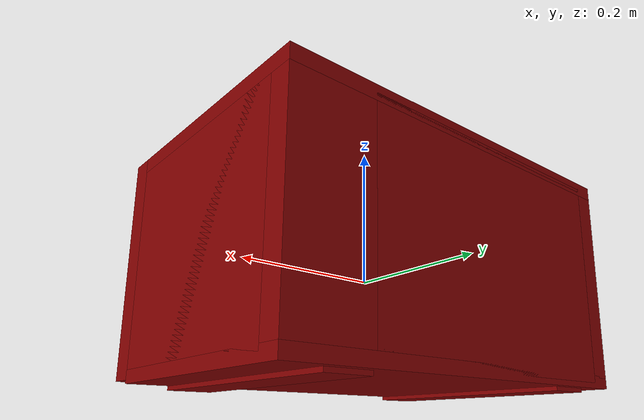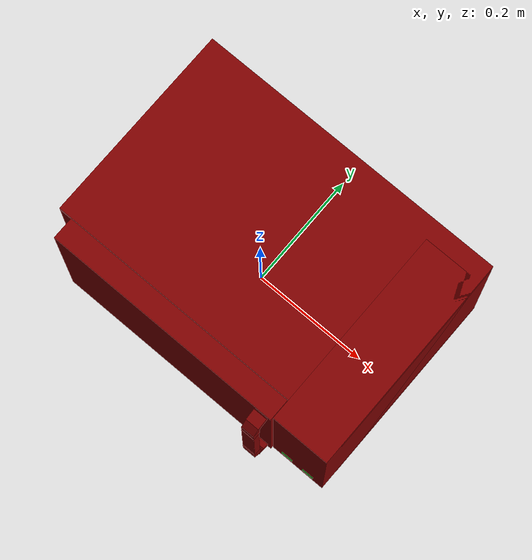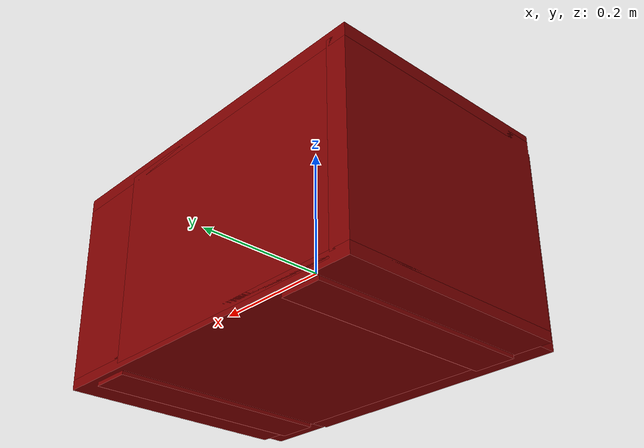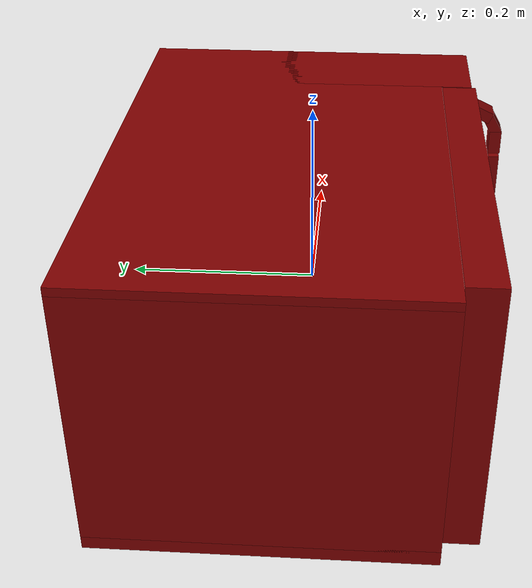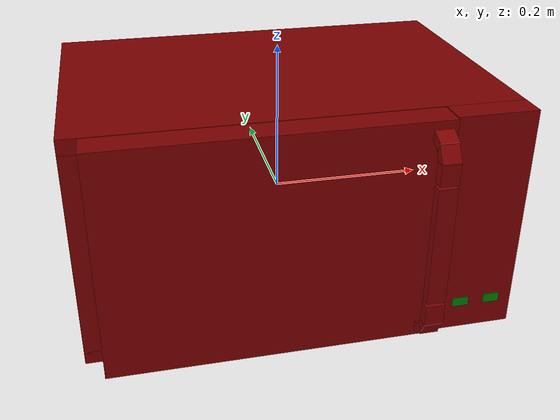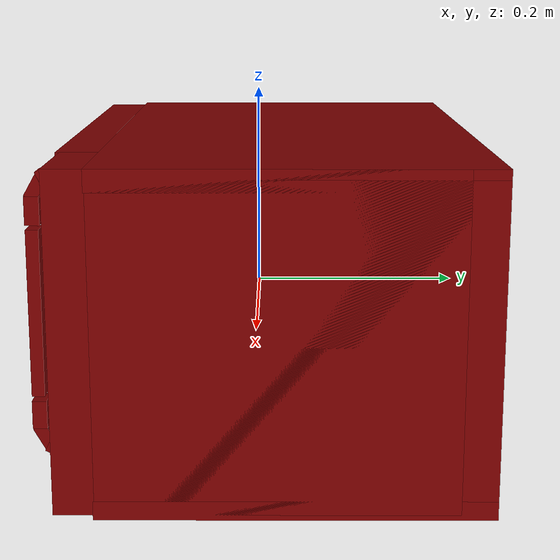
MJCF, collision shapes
<?xml version='1.0' encoding='UTF-8'?>
<mujoco model="model">
  <option timestep="0.002" gravity="0.0 0.0 -9.81"/>
  <compiler angle="radian"/>
  <asset>
    <mesh file="visuals/door.obj" name="door_vis"/>
    <mesh file="visuals/door_Clear.obj" name="door_Clear_vis"/>
    <mesh file="visuals/Body001.obj" name="Body001_vis"/>
    <mesh file="visuals/Disc001.obj" name="Disc001_vis"/>
    <texture file="visuals/T_BC001.png" name="Body001_material" type="2d"/>
    <material name="Body001_material" rgba="1 1 1 1.0" texture="Body001_material" shininess="0.4472135901451111" specular="0.5"/>
    <texture file="visuals/T_BC001.png" name="door_material" type="2d"/>
    <material name="door_material" rgba="1 1 1 1.0" texture="door_material" shininess="0.4472135901451111" specular="0.5"/>
    <material name="door_Clear_material" rgba="0.11601322144269943 0.11601322144269943 0.11601322144269943 0.699999988079071" shininess="0.4472135901451111" specular="0.3103448502657381"/>
    <texture file="visuals/T_BC001.png" name="Disc001_material" type="2d"/>
    <material name="Disc001_material" rgba="1 1 1 1.0" texture="Disc001_material" shininess="0.4472135901451111" specular="0.5"/>
  </asset>
  <default>
    <default class="visual">
      <geom conaffinity="0" contype="0" group="1" type="mesh"/>
    </default>
    <default class="collision">
      <geom group="0" rgba="0.5 0 0 0.5"/>
    </default>
    <default class="spawn">
      <geom group="0" rgba="1 1 1 0.5" contype="0" conaffinity="0"/>
      <site group="0" rgba="1 1 1 0.5"/>
    </default>
    <default class="region">
      <geom group="1" conaffinity="0" contype="0" rgba="0 1 0 0"/>
    </default>
  </default>
  <worldbody>
    <body>
      <body name="object">
        <geom class="collision" type="cylinder" pos="-0.053759023547172546 0.01935245841741562 -0.12291630357503891" size="0.14134545624256134 0.0019897485617548227" quat="1.0 0.0 0.0 0.0" name="tray" rgba="0 1 0 0.5"/>
        <geom class="collision" type="box" pos="0.24784424901008606 -0.17830020189285278 -0.10434824228286743" size="0.01096301432698965 0.0005531709175556898 0.006239055655896664" quat="1.0 0.0 0.0 0.0" name="stop_button" rgba="0.0 0.5 0 0.5"/>
        <geom class="collision" type="box" pos="0.20505373179912567 -0.17830020189285278 -0.10434824228286743" size="0.010903910733759403 0.0005531710339710116 0.006239056587219238" quat="1.0 0.0 0.0 0.0" name="start_button" rgba="0.0 0.5 0 0.5"/>
        <geom mesh="Body001_vis" type="mesh" solimp="0.998 0.998 0.001" solref="0.001 1" friction="0.95 0.3 0.1" class="visual" material="Body001_material"/>
        <geom class="collision" type="box" pos="1.5071140779809866e-08 0.03501347452402115 0.14736834168434143" size="0.2771352529525757 0.17626895010471344 0.009800040163099766" quat="1.0 0.0 0.0 0.0"/>
        <geom class="collision" type="box" pos="1.5071140779809866e-08 0.03501347452402115 -0.1419992595911026" size="0.2771352529525757 0.17626895010471344 0.008780794218182564" quat="1.0 0.0 0.0 0.0"/>
        <geom class="collision" type="box" pos="-0.2614961564540863 0.035013481974601746 0.0060613928362727165" size="0.015639089047908783 0.17626896500587463 0.14205798506736755" quat="1.0 0.0 0.0 0.0"/>
        <geom class="collision" type="box" pos="0.20731253921985626 0.035562701523303986 0.0060613928362727165" size="0.06982272118330002 0.1757197082042694 0.14205798506736755" quat="1.0 0.0 0.0 0.0"/>
        <geom class="collision" type="box" pos="-0.041193969547748566 0.19684278964996338 0.0019925192464143038" size="0.20513026416301727 0.014439636841416359 0.1452065259218216" quat="1.0 0.0 0.0 0.0"/>
        <geom class="collision" type="box" pos="0.22564545273780823 0.0016016747104004025 0.005581490695476532" size="0.051489803940057755 0.17765840888023376 0.1515868604183197" quat="1.0 0.0 0.0 0.0"/>
        <geom class="collision" type="box" pos="-0.1910099983215332 0.033206794410943985 -0.15430724620819092" size="0.0305914506316185 0.17000168561935425 0.00286117079667747" quat="1.0 0.0 0.0 0.0"/>
        <geom class="collision" type="box" pos="0.19278842210769653 0.033206794410943985 -0.15430724620819092" size="0.0305914506316185 0.17000168561935425 0.00286117079667747" quat="1.0 0.0 0.0 0.0"/>
        <body name="door">
          <joint axis="0.0 0.0 1.0" pos="-0.25734397768974304 -0.16165359318256378 0.003742557018995285" limited="true" name="microjoint" range="-1.5707963267948966 0.0" type="hinge" damping="1" frictionloss="1" armature=".01" stiffness="0.05"/>
          <geom mesh="door_vis" type="mesh" solimp="0.998 0.998 0.001" solref="0.001 1" friction="0.95 0.3 0.1" class="visual" material="door_material"/>
          <geom class="collision" type="box" pos="-0.039882414042949677 -0.1612330824136734 0.0055624027736485004" size="0.21326802670955658 0.019354145973920822 0.15110208094120026" quat="1.0 0.0 0.0 0.0"/>
          <geom class="collision" type="box" pos="0.1542731523513794 -0.20566736161708832 0.0045122005976736546" size="0.012436413206160069 0.006091923452913761 0.07990747690200806" quat="1.0 0.0 0.0 0.0" name="door_handle_main"/>
          <geom class="collision" type="box" pos="0.154417023062706 -0.20513561367988586 -0.0935002788901329" size="0.012513306923210621 0.006880520842969418 0.013624418526887894" quat="1.0 0.0 0.0 0.0"/>
          <geom class="collision" type="box" pos="0.15464726090431213 -0.20087064802646637 -0.11470231413841248" size="0.011913502588868141 0.011351507157087326 0.006156741641461849" quat="0.864357054233551 -0.5028786063194275 7.70788858517335e-07 -5.2654712590083363e-08"/>
          <geom class="collision" type="box" pos="0.1547970175743103 -0.18898290395736694 -0.12767444550991058" size="0.012174788862466812 0.010396204888820648 0.006479963660240173" quat="0.9755166172981262 -0.21992573142051697 4.951577921019634e-07 7.552212650807633e-07"/>
          <geom class="collision" type="box" pos="0.15461300313472748 -0.20513561367988586 0.10205253213644028" size="0.011992817744612694 0.006880525965243578 0.013624419458210468" quat="1.0 0.0 0.0 0.0"/>
          <geom class="collision" type="box" pos="0.15468689799308777 -0.20087064802646637 0.12325455248355865" size="0.01183171197772026 0.011351506225764751 0.006156741641461849" quat="9.661798827664825e-08 -6.952240596547199e-07 -0.5028786063194275 0.864357054233551"/>
          <geom class="collision" type="box" pos="0.15490113198757172 -0.18898290395736694 0.13622668385505676" size="0.012070685625076294 0.010396204888820648 0.006479963660240173" quat="7.97862526269455e-07 4.855448878515745e-07 0.21992573142051697 -0.9755166172981262"/>
          <geom class="collision" type="box" pos="-0.050893645733594894 -0.16073425114154816 0.0058904653415083885" size="0.1643805205821991 0.015393154695630074 0.10524028539657593" quat="1.0 0.0 0.0 0.0"/>
          <geom class="collision" type="box" pos="-0.039882414042949677 -0.1762211173772812 0.0055624027736485004" size="0.21326757967472076 0.004366063047200441 0.15110161900520325" quat="1.0 0.0 0.0 0.0" name="door_main"/>
          <body name="door_Clear">
            <geom mesh="door_Clear_vis" type="mesh" solimp="0.998 0.998 0.001" solref="0.001 1" friction="0.95 0.3 0.1" class="visual" material="door_Clear_material"/>
            <geom class="collision" type="box" pos="-0.050893645733594894 -0.16073425114154816 0.0058904653415083885" size="0.1643805205821991 0.015393154695630074 0.10524028539657593" quat="1.0 0.0 0.0 0.0"/>
          </body>
        </body>
        <body name="Disc001">
          <joint axis="0.0 0.0 1.0" pos="-0.05375900864601135 0.019352491945028305 -0.12597490847110748" limited="false" name="Disc001_joint" range="0 360" type="hinge" damping="1" frictionloss="1" armature=".01" stiffness="0.05"/>
          <geom mesh="Disc001_vis" type="mesh" solimp="0.998 0.998 0.001" solref="0.001 1" friction="0.95 0.3 0.1" class="visual" material="Disc001_material"/>
          <geom class="collision" type="cylinder" pos="-0.05375901237130165 0.01935245841741562 -0.12884104251861572" size="0.14195889234542847 0.002919303486123681" quat="1.0 0.0 0.0 0.0"/>
        </body>
        <geom class="region" name="reg_int" type="box" pos="-0.05417686700820923 0.01931052654981613 0.0042724572122097015" size="0.18473282253742218 0.15285192972421646 0.12628440728783608"/>
        <geom class="region" name="reg_main" type="box" pos="1.0849102949350709e-08 0.015347645618021488 -5.424551474675354e-09" size="0.2781352529525757 0.19693480229377747 0.15816838836669922"/>
      <geom class="region" name="reg_tray" type="cylinder" pos="-0.053759023547172546 0.01935245841741562 0.004815154743380845" size="0.14134545624256134 0.12474170975666493"/></body>
    </body>
  </worldbody>
  <actuator>
    <motor name="microjoint_actuator" joint="microjoint" gear="10"/>
    <motor name="Disc001_joint_actuator" joint="Disc001_joint" gear="10"/>
  </actuator>
</mujoco>
